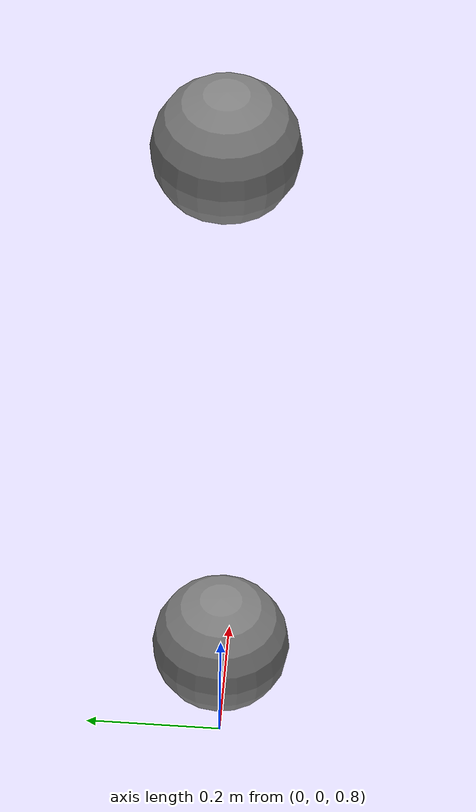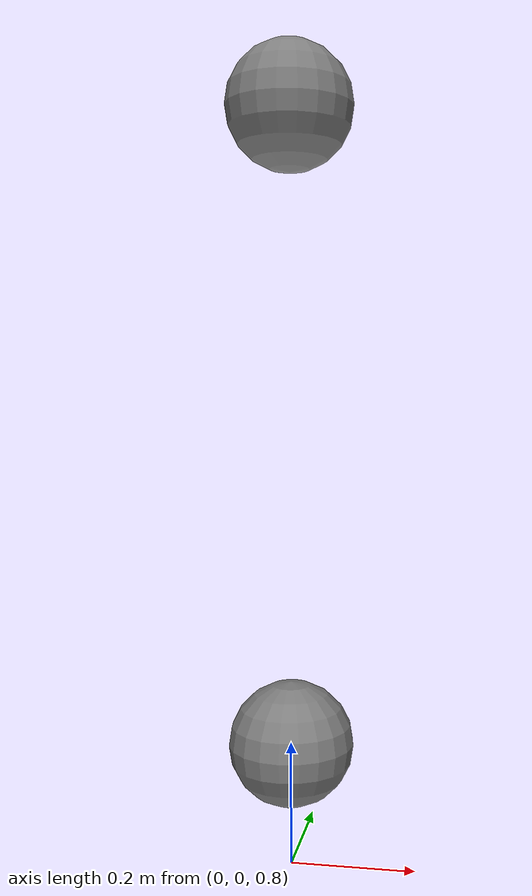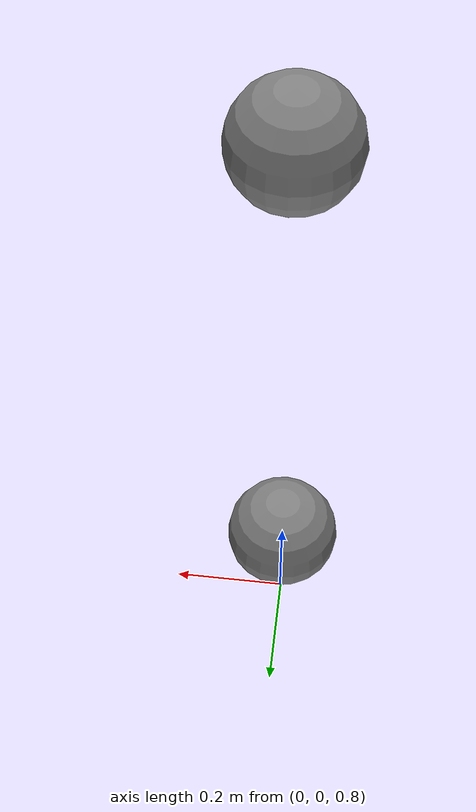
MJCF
<mujoco model="eq_nested_class">
            <default>
                <default class="parent">
                    <equality solref="0.05 0.8"/>
                    <default class="child">
                        <equality solimp="0.8 0.9 0.01 0.4 3.0"/>
                    </default>
                </default>
            </default>
            <worldbody>
                <body name="b1" pos="0 0 1">
                    <joint name="j1" type="hinge" axis="0 1 0"/>
                    <geom type="sphere" size="0.1" mass="1.0"/>
                </body>
                <body name="b2" pos="0 0 2">
                    <joint name="j2" type="hinge" axis="0 1 0"/>
                    <geom type="sphere" size="0.1" mass="1.0"/>
                </body>
            </worldbody>
            <equality>
                <connect class="child" body1="b1" body2="b2" anchor="0 0 1.5"/>
            </equality>
        </mujoco>
